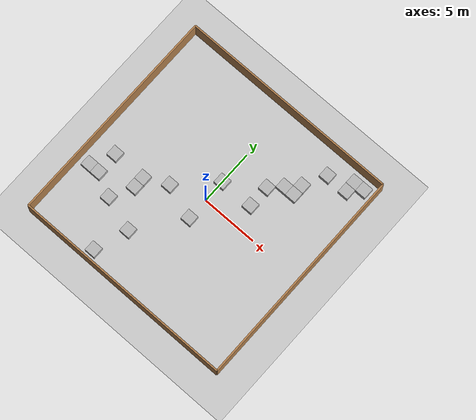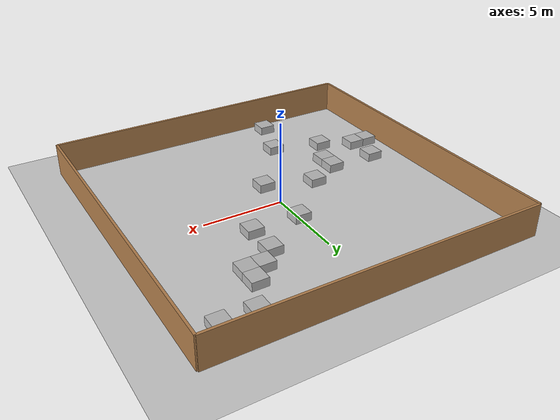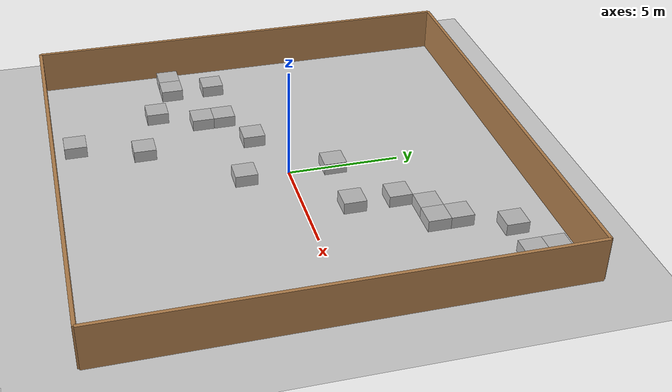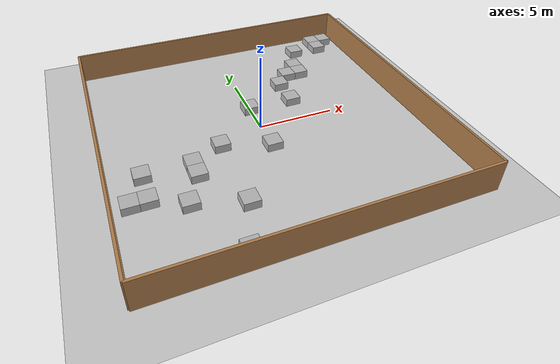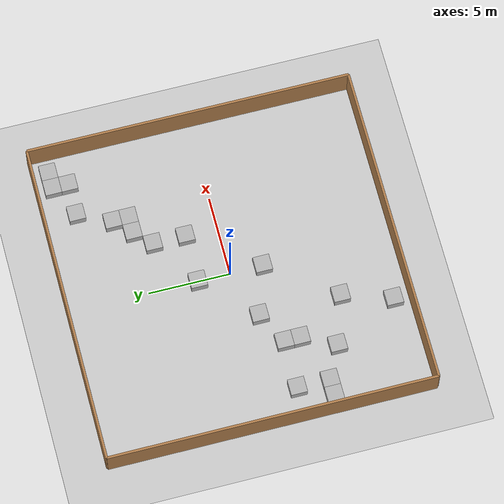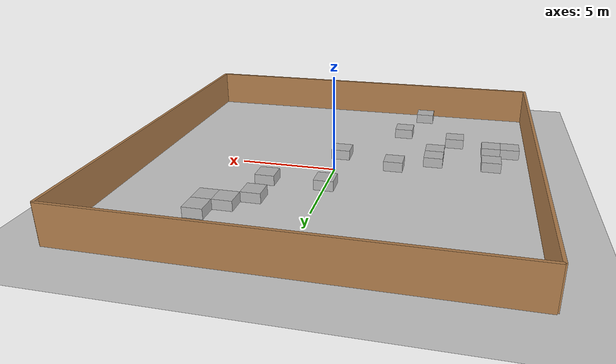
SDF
<sdf version="1.6">
 <world name="simple_room_with_fixed_boxes">
  <include><uri>model://ground_plane</uri></include>
  <include><uri>model://sun</uri></include>
  <include><uri>model://simple_room</uri></include>
  <model name="box_1">
   <include><name>box</name><static>true</static><pose>0 -2 0 0 0 0</pose><uri>model://box</uri></include>
  </model>
  <model name="box_2">
   <include><name>box</name><static>true</static><pose>-3 -1 0 0 0 0</pose><uri>model://box</uri></include>
  </model>
  <model name="box_3">
   <include><name>box</name><static>true</static><pose>-3 -6 0 0 0 0</pose><uri>model://box</uri></include>
  </model>
  <model name="box_4">
   <include><name>box</name><static>true</static><pose>-4 -9 0 0 0 0</pose><uri>model://box</uri></include>
  </model>
  <model name="box_5">
   <include><name>box</name><static>true</static><pose>-5 -3 0 0 0 0</pose><uri>model://box</uri></include>
  </model>
  <model name="box_6">
   <include><name>box</name><static>true</static><pose>-5 -2 0 0 0 0</pose><uri>model://box</uri></include>
  </model>
  <model name="box_7">
   <include><name>box</name><static>true</static><pose>-6 -5 0 0 0 0</pose><uri>model://box</uri></include>
  </model>
  <model name="box_8">
   <include><name>box</name><static>true</static><pose>-8 -2 0 0 0 0</pose><uri>model://box</uri></include>
  </model>
  <model name="box_9">
   <include><name>box</name><static>true</static><pose>-8 -4 0 0 0 0</pose><uri>model://box</uri></include>
  </model>
  <model name="box_10">
   <include><name>box</name><static>true</static><pose>-9 -4 0 0 0 0</pose><uri>model://box</uri></include>
  </model>
  <model name="box_11">
   <include><name>box</name><static>true</static><pose>0 2 0 0 0 0</pose><uri>model://box</uri></include>
  </model>
  <model name="box_12">
   <include><name>box</name><static>true</static><pose>3 2 0 0 0 0</pose><uri>model://box</uri></include>
  </model>
  <model name="box_13">
   <include><name>box</name><static>true</static><pose>3 4 0 0 0 0</pose><uri>model://box</uri></include>
  </model>
  <model name="box_14">
   <include><name>box</name><static>true</static><pose>4 5 0 0 0 0</pose><uri>model://box</uri></include>
  </model>
  <model name="box_15">
   <include><name>box</name><static>true</static><pose>5 5 0 0 0 0</pose><uri>model://box</uri></include>
  </model>
  <model name="box_16">
   <include><name>box</name><static>true</static><pose>5 6 0 0 0 0</pose><uri>model://box</uri></include>
  </model>
  <model name="box_17">
   <include><name>box</name><static>true</static><pose>6 8 0 0 0 0</pose><uri>model://box</uri></include>
  </model>
  <model name="box_18">
   <include><name>box</name><static>true</static><pose>8 8 0 0 0 0</pose><uri>model://box</uri></include>
  </model>
  <model name="box_19">
   <include><name>box</name><static>true</static><pose>8 9 0 0 0 0</pose><uri>model://box</uri></include>
  </model>
  <model name="box_20">
   <include><name>box</name><static>true</static><pose>9 9 0 0 0 0</pose><uri>model://box</uri></include>
  </model>
 </world>
</sdf>

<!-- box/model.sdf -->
<sdf version='1.7'>

  <model name="box">

     <link name="box">
      <collision name="collision">
        <geometry>
          <box>
            <size>1 1 1</size>
          </box>
        </geometry>
        <max_contacts>10</max_contacts>
        <surface>
          <contact>
            <ode/>
          </contact>
          <bounce/>
          <friction>
            <torsional>
              <ode/>
            </torsional>
            <ode/>
          </friction>
        </surface>
      </collision>
      <visual name="visual">
        <geometry>
          <box>
            <size>1 1 1</size>
          </box>
        </geometry>
      </visual>
      <self_collide>0</self_collide>
      <enable_wind>0</enable_wind>
      <kinematic>0</kinematic>
    </link>
    <static>1</static>

  </model>

</sdf>

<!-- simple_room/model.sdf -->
<sdf version='1.6'>

  <model name='simple_room'>
    <pose>0 0 0 0 -0 0</pose>

    <link name='Wall_0'>
      <pose>0 -10 1 0 -0 0</pose>
      <collision name='Wall_0_Collision'>
        <geometry>
          <box>
            <size>20 0.15 2.0</size>
          </box>
        </geometry>
        <max_contacts>10</max_contacts>
        <surface>
          <contact>
            <ode/>
          </contact>
          <bounce/>
          <friction>
            <torsional>
              <ode/>
            </torsional>
            <ode/>
          </friction>
        </surface>
      </collision>
      <visual name='Wall_0_Visual'>
        <geometry>
          <box>
            <size>20 0.15 2.0</size>
          </box>
        </geometry>
        <material>
          <script>
            <uri>file://media/materials/scripts/gazebo.material</uri>
            <name>Gazebo/Wood</name>
          </script>
          <ambient>1 1 1 1</ambient>
        </material>
        <meta>
          <layer>0</layer>
        </meta>
      </visual>
      <self_collide>0</self_collide>
      <enable_wind>0</enable_wind>
      <kinematic>0</kinematic>
    </link>

    <link name='Wall_1'>
      <pose>10 -0 1 0 -0 1.5708</pose>
      <collision name='Wall_1_Collision'>
        <geometry>
          <box>
            <size>20 0.15 2.0</size>
          </box>
        </geometry>
        <max_contacts>10</max_contacts>
        <surface>
          <contact>
            <ode/>
          </contact>
          <bounce/>
          <friction>
            <torsional>
              <ode/>
            </torsional>
            <ode/>
          </friction>
        </surface>
      </collision>
      <visual name='Wall_1_Visual'>
        <geometry>
          <box>
            <size>20 0.15 2.0</size>
          </box>
        </geometry>
        <material>
          <script>
            <uri>file://media/materials/scripts/gazebo.material</uri>
            <name>Gazebo/Wood</name>
          </script>
          <ambient>1 1 1 1</ambient>
        </material>
        <meta>
          <layer>0</layer>
        </meta>
      </visual>
      <self_collide>0</self_collide>
      <enable_wind>0</enable_wind>
      <kinematic>0</kinematic>
    </link>

    <link name='Wall_2'>
      <pose>0 10 1 0 0 3.14159</pose>
      <collision name='Wall_2_Collision'>
        <geometry>
          <box>
            <size>20 0.15 2.0</size>
          </box>
        </geometry>
        <max_contacts>10</max_contacts>
        <surface>
          <contact>
            <ode/>
          </contact>
          <bounce/>
          <friction>
            <torsional>
              <ode/>
            </torsional>
            <ode/>
          </friction>
        </surface>
      </collision>
      <visual name='Wall_2_Visual'>
        <geometry>
          <box>
            <size>20 0.15 2.0</size>
          </box>
        </geometry>
        <material>
          <script>
            <uri>file://media/materials/scripts/gazebo.material</uri>
            <name>Gazebo/Wood</name>
          </script>
          <ambient>1 1 1 1</ambient>
        </material>
        <meta>
          <layer>0</layer>
        </meta>
      </visual>
      <self_collide>0</self_collide>
      <enable_wind>0</enable_wind>
      <kinematic>0</kinematic>
    </link>

    <link name='Wall_3'>
      <pose>-10 0 1 0 -0 -1.5708</pose>
      <collision name='Wall_3_Collision'>
        <geometry>
          <box>
            <size>20 0.15 2.0</size>
          </box>
        </geometry>
        <max_contacts>10</max_contacts>
        <surface>
          <contact>
            <ode/>
          </contact>
          <bounce/>
          <friction>
            <torsional>
              <ode/>
            </torsional>
            <ode/>
          </friction>
        </surface>
      </collision>
      <visual name='Wall_3_Visual'>
        <geometry>
          <box>
            <size>20 0.15 2.0</size>
          </box>
        </geometry>
        <material>
          <script>
            <uri>file://media/materials/scripts/gazebo.material</uri>
            <name>Gazebo/Wood</name>
          </script>
          <ambient>1 1 1 1</ambient>
        </material>
        <meta>
          <layer>0</layer>
        </meta>
      </visual>
      <self_collide>0</self_collide>
      <enable_wind>0</enable_wind>
      <kinematic>0</kinematic>
    </link>
    <static>1</static>
  </model>
</sdf>
